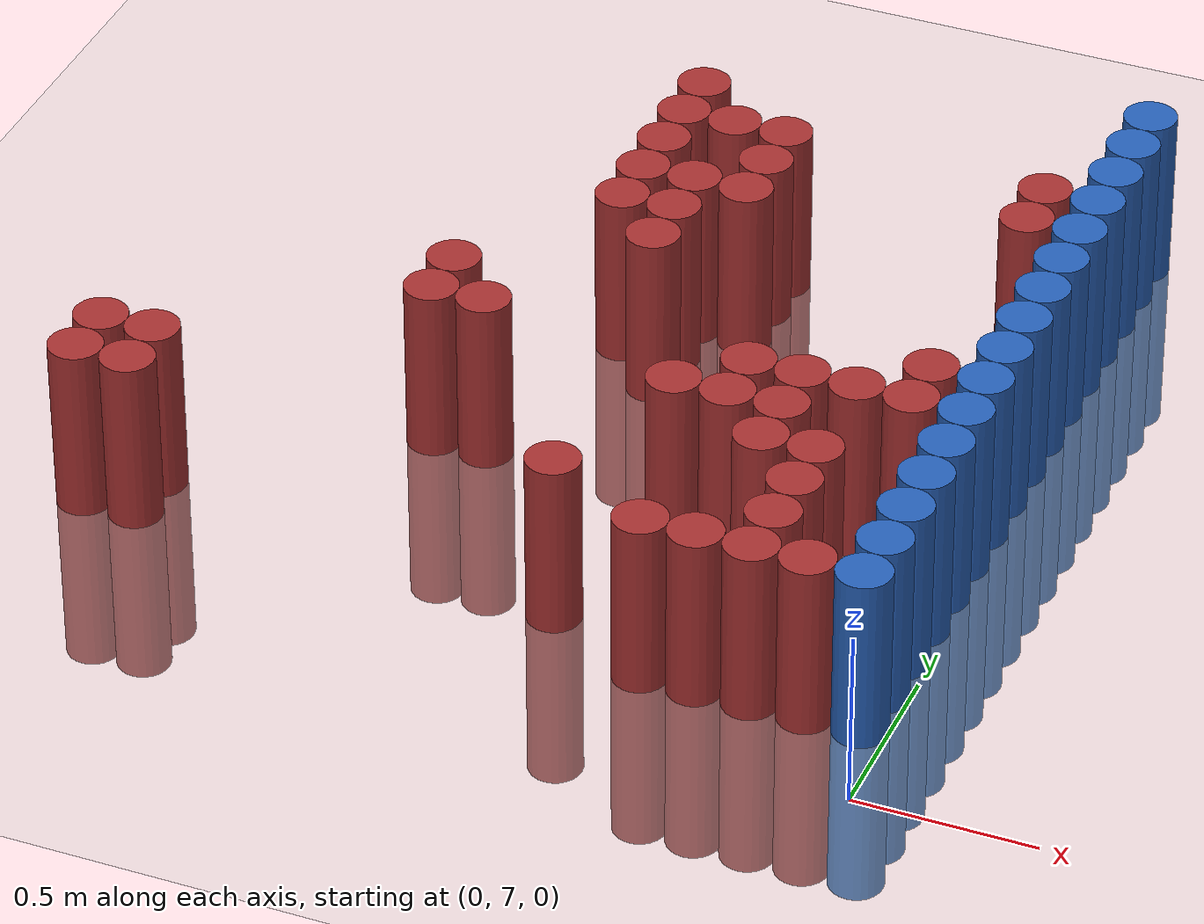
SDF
<sdf version="1.6">
 <world name="world_247">
  <model name="ground_plane">
   <static>1</static>
   <link name="link">
    <collision name="collision">
     <geometry><plane><normal>0 0 1</normal><size>100 100</size></plane></geometry>
     <surface><friction><ode><mu>100</mu><mu2>50</mu2></ode></friction></surface>
    </collision>
    <visual name="visual">
     <cast_shadows>0</cast_shadows>
     <geometry><plane><normal>0 0 1</normal><size>100 100</size></plane></geometry>
     <material>
      <script><uri>file://media/materials/scripts/gazebo.material</uri><name>Gazebo/Grey</name></script>
     </material>
    </visual>
   </link>
  </model>
  <model name="unit_cylinder_160">
   <static>1</static>
   <pose>-2.325000 7.425000 0.000000 0.000000 0.000000 0.000000</pose>
   <link name="link">
    <inertial>
     <mass>1</mass>
     <inertia><ixx>0.145833</ixx><ixy>0</ixy><ixz>0</ixz><iyy>0.145833</iyy><iyz>0</iyz><izz>0.125</izz></inertia>
    </inertial>
    <collision name="collision">
     <geometry><cylinder><radius>0.075000</radius><length>1</length></cylinder></geometry>
    </collision>
    <visual name="visual">
     <geometry><cylinder><radius>0.075000</radius><length>1</length></cylinder></geometry>
     <material>
      <ambient>0.648000 0.192000 0.192000 1</ambient>
      <diffuse>0.648000 0.192000 0.192000 1</diffuse>
     </material>
     <material>
      <script><name>Gazebo/Grey</name><uri>file://media/materials/scripts/gazebo.material</uri></script>
     </material>
    </visual>
   </link>
  </model>
  <model name="unit_cylinder_161">
   <static>1</static>
   <pose>-2.325000 7.575000 0.000000 0.000000 0.000000 0.000000</pose>
   <link name="link">
    <inertial>
     <mass>1</mass>
     <inertia><ixx>0.145833</ixx><ixy>0</ixy><ixz>0</ixz><iyy>0.145833</iyy><iyz>0</iyz><izz>0.125</izz></inertia>
    </inertial>
    <collision name="collision">
     <geometry><cylinder><radius>0.075000</radius><length>1</length></cylinder></geometry>
    </collision>
    <visual name="visual">
     <geometry><cylinder><radius>0.075000</radius><length>1</length></cylinder></geometry>
     <material>
      <ambient>0.648000 0.192000 0.192000 1</ambient>
      <diffuse>0.648000 0.192000 0.192000 1</diffuse>
     </material>
     <material>
      <script><name>Gazebo/Grey</name><uri>file://media/materials/scripts/gazebo.material</uri></script>
     </material>
    </visual>
   </link>
  </model>
  <model name="unit_cylinder_166">
   <static>1</static>
   <pose>-2.175000 7.425000 0.000000 0.000000 0.000000 0.000000</pose>
   <link name="link">
    <inertial>
     <mass>1</mass>
     <inertia><ixx>0.145833</ixx><ixy>0</ixy><ixz>0</ixz><iyy>0.145833</iyy><iyz>0</iyz><izz>0.125</izz></inertia>
    </inertial>
    <collision name="collision">
     <geometry><cylinder><radius>0.075000</radius><length>1</length></cylinder></geometry>
    </collision>
    <visual name="visual">
     <geometry><cylinder><radius>0.075000</radius><length>1</length></cylinder></geometry>
     <material>
      <ambient>0.648000 0.192000 0.192000 1</ambient>
      <diffuse>0.648000 0.192000 0.192000 1</diffuse>
     </material>
     <material>
      <script><name>Gazebo/Grey</name><uri>file://media/materials/scripts/gazebo.material</uri></script>
     </material>
    </visual>
   </link>
  </model>
  <model name="unit_cylinder_167">
   <static>1</static>
   <pose>-2.175000 7.575000 0.000000 0.000000 0.000000 0.000000</pose>
   <link name="link">
    <inertial>
     <mass>1</mass>
     <inertia><ixx>0.145833</ixx><ixy>0</ixy><ixz>0</ixz><iyy>0.145833</iyy><iyz>0</iyz><izz>0.125</izz></inertia>
    </inertial>
    <collision name="collision">
     <geometry><cylinder><radius>0.075000</radius><length>1</length></cylinder></geometry>
    </collision>
    <visual name="visual">
     <geometry><cylinder><radius>0.075000</radius><length>1</length></cylinder></geometry>
     <material>
      <ambient>0.648000 0.192000 0.192000 1</ambient>
      <diffuse>0.648000 0.192000 0.192000 1</diffuse>
     </material>
     <material>
      <script><name>Gazebo/Grey</name><uri>file://media/materials/scripts/gazebo.material</uri></script>
     </material>
    </visual>
   </link>
  </model>
  <model name="unit_cylinder_173">
   <static>1</static>
   <pose>-1.575000 8.025000 0.000000 0.000000 0.000000 0.000000</pose>
   <link name="link">
    <inertial>
     <mass>1</mass>
     <inertia><ixx>0.145833</ixx><ixy>0</ixy><ixz>0</ixz><iyy>0.145833</iyy><iyz>0</iyz><izz>0.125</izz></inertia>
    </inertial>
    <collision name="collision">
     <geometry><cylinder><radius>0.075000</radius><length>1</length></cylinder></geometry>
    </collision>
    <visual name="visual">
     <geometry><cylinder><radius>0.075000</radius><length>1</length></cylinder></geometry>
     <material>
      <ambient>0.648000 0.192000 0.192000 1</ambient>
      <diffuse>0.648000 0.192000 0.192000 1</diffuse>
     </material>
     <material>
      <script><name>Gazebo/Grey</name><uri>file://media/materials/scripts/gazebo.material</uri></script>
     </material>
    </visual>
   </link>
  </model>
  <model name="unit_cylinder_174">
   <static>1</static>
   <pose>-1.575000 8.175000 0.000000 0.000000 0.000000 0.000000</pose>
   <link name="link">
    <inertial>
     <mass>1</mass>
     <inertia><ixx>0.145833</ixx><ixy>0</ixy><ixz>0</ixz><iyy>0.145833</iyy><iyz>0</iyz><izz>0.125</izz></inertia>
    </inertial>
    <collision name="collision">
     <geometry><cylinder><radius>0.075000</radius><length>1</length></cylinder></geometry>
    </collision>
    <visual name="visual">
     <geometry><cylinder><radius>0.075000</radius><length>1</length></cylinder></geometry>
     <material>
      <ambient>0.648000 0.192000 0.192000 1</ambient>
      <diffuse>0.648000 0.192000 0.192000 1</diffuse>
     </material>
     <material>
      <script><name>Gazebo/Grey</name><uri>file://media/materials/scripts/gazebo.material</uri></script>
     </material>
    </visual>
   </link>
  </model>
  <model name="unit_cylinder_175">
   <static>1</static>
   <pose>-1.425000 8.025000 0.000000 0.000000 0.000000 0.000000</pose>
   <link name="link">
    <inertial>
     <mass>1</mass>
     <inertia><ixx>0.145833</ixx><ixy>0</ixy><ixz>0</ixz><iyy>0.145833</iyy><iyz>0</iyz><izz>0.125</izz></inertia>
    </inertial>
    <collision name="collision">
     <geometry><cylinder><radius>0.075000</radius><length>1</length></cylinder></geometry>
    </collision>
    <visual name="visual">
     <geometry><cylinder><radius>0.075000</radius><length>1</length></cylinder></geometry>
     <material>
      <ambient>0.648000 0.192000 0.192000 1</ambient>
      <diffuse>0.648000 0.192000 0.192000 1</diffuse>
     </material>
     <material>
      <script><name>Gazebo/Grey</name><uri>file://media/materials/scripts/gazebo.material</uri></script>
     </material>
    </visual>
   </link>
  </model>
  <model name="unit_cylinder_177">
   <static>1</static>
   <pose>-1.275000 8.625000 0.000000 0.000000 0.000000 0.000000</pose>
   <link name="link">
    <inertial>
     <mass>1</mass>
     <inertia><ixx>0.145833</ixx><ixy>0</ixy><ixz>0</ixz><iyy>0.145833</iyy><iyz>0</iyz><izz>0.125</izz></inertia>
    </inertial>
    <collision name="collision">
     <geometry><cylinder><radius>0.075000</radius><length>1</length></cylinder></geometry>
    </collision>
    <visual name="visual">
     <geometry><cylinder><radius>0.075000</radius><length>1</length></cylinder></geometry>
     <material>
      <ambient>0.648000 0.192000 0.192000 1</ambient>
      <diffuse>0.648000 0.192000 0.192000 1</diffuse>
     </material>
     <material>
      <script><name>Gazebo/Grey</name><uri>file://media/materials/scripts/gazebo.material</uri></script>
     </material>
    </visual>
   </link>
  </model>
  <model name="unit_cylinder_178">
   <static>1</static>
   <pose>-1.275000 8.775000 0.000000 0.000000 0.000000 0.000000</pose>
   <link name="link">
    <inertial>
     <mass>1</mass>
     <inertia><ixx>0.145833</ixx><ixy>0</ixy><ixz>0</ixz><iyy>0.145833</iyy><iyz>0</iyz><izz>0.125</izz></inertia>
    </inertial>
    <collision name="collision">
     <geometry><cylinder><radius>0.075000</radius><length>1</length></cylinder></geometry>
    </collision>
    <visual name="visual">
     <geometry><cylinder><radius>0.075000</radius><length>1</length></cylinder></geometry>
     <material>
      <ambient>0.648000 0.192000 0.192000 1</ambient>
      <diffuse>0.648000 0.192000 0.192000 1</diffuse>
     </material>
     <material>
      <script><name>Gazebo/Grey</name><uri>file://media/materials/scripts/gazebo.material</uri></script>
     </material>
    </visual>
   </link>
  </model>
  <model name="unit_cylinder_179">
   <static>1</static>
   <pose>-1.275000 8.925000 0.000000 0.000000 0.000000 0.000000</pose>
   <link name="link">
    <inertial>
     <mass>1</mass>
     <inertia><ixx>0.145833</ixx><ixy>0</ixy><ixz>0</ixz><iyy>0.145833</iyy><iyz>0</iyz><izz>0.125</izz></inertia>
    </inertial>
    <collision name="collision">
     <geometry><cylinder><radius>0.075000</radius><length>1</length></cylinder></geometry>
    </collision>
    <visual name="visual">
     <geometry><cylinder><radius>0.075000</radius><length>1</length></cylinder></geometry>
     <material>
      <ambient>0.648000 0.192000 0.192000 1</ambient>
      <diffuse>0.648000 0.192000 0.192000 1</diffuse>
     </material>
     <material>
      <script><name>Gazebo/Grey</name><uri>file://media/materials/scripts/gazebo.material</uri></script>
     </material>
    </visual>
   </link>
  </model>
  <model name="unit_cylinder_180">
   <static>1</static>
   <pose>-1.275000 9.075000 0.000000 0.000000 0.000000 0.000000</pose>
   <link name="link">
    <inertial>
     <mass>1</mass>
     <inertia><ixx>0.145833</ixx><ixy>0</ixy><ixz>0</ixz><iyy>0.145833</iyy><iyz>0</iyz><izz>0.125</izz></inertia>
    </inertial>
    <collision name="collision">
     <geometry><cylinder><radius>0.075000</radius><length>1</length></cylinder></geometry>
    </collision>
    <visual name="visual">
     <geometry><cylinder><radius>0.075000</radius><length>1</length></cylinder></geometry>
     <material>
      <ambient>0.648000 0.192000 0.192000 1</ambient>
      <diffuse>0.648000 0.192000 0.192000 1</diffuse>
     </material>
     <material>
      <script><name>Gazebo/Grey</name><uri>file://media/materials/scripts/gazebo.material</uri></script>
     </material>
    </visual>
   </link>
  </model>
  <model name="unit_cylinder_181">
   <static>1</static>
   <pose>-1.275000 9.225000 0.000000 0.000000 0.000000 0.000000</pose>
   <link name="link">
    <inertial>
     <mass>1</mass>
     <inertia><ixx>0.145833</ixx><ixy>0</ixy><ixz>0</ixz><iyy>0.145833</iyy><iyz>0</iyz><izz>0.125</izz></inertia>
    </inertial>
    <collision name="collision">
     <geometry><cylinder><radius>0.075000</radius><length>1</length></cylinder></geometry>
    </collision>
    <visual name="visual">
     <geometry><cylinder><radius>0.075000</radius><length>1</length></cylinder></geometry>
     <material>
      <ambient>0.648000 0.192000 0.192000 1</ambient>
      <diffuse>0.648000 0.192000 0.192000 1</diffuse>
     </material>
     <material>
      <script><name>Gazebo/Grey</name><uri>file://media/materials/scripts/gazebo.material</uri></script>
     </material>
    </visual>
   </link>
  </model>
  <model name="unit_cylinder_187">
   <static>1</static>
   <pose>-1.125000 8.475000 0.000000 0.000000 0.000000 0.000000</pose>
   <link name="link">
    <inertial>
     <mass>1</mass>
     <inertia><ixx>0.145833</ixx><ixy>0</ixy><ixz>0</ixz><iyy>0.145833</iyy><iyz>0</iyz><izz>0.125</izz></inertia>
    </inertial>
    <collision name="collision">
     <geometry><cylinder><radius>0.075000</radius><length>1</length></cylinder></geometry>
    </collision>
    <visual name="visual">
     <geometry><cylinder><radius>0.075000</radius><length>1</length></cylinder></geometry>
     <material>
      <ambient>0.648000 0.192000 0.192000 1</ambient>
      <diffuse>0.648000 0.192000 0.192000 1</diffuse>
     </material>
     <material>
      <script><name>Gazebo/Grey</name><uri>file://media/materials/scripts/gazebo.material</uri></script>
     </material>
    </visual>
   </link>
  </model>
  <model name="unit_cylinder_188">
   <static>1</static>
   <pose>-1.125000 8.625000 0.000000 0.000000 0.000000 0.000000</pose>
   <link name="link">
    <inertial>
     <mass>1</mass>
     <inertia><ixx>0.145833</ixx><ixy>0</ixy><ixz>0</ixz><iyy>0.145833</iyy><iyz>0</iyz><izz>0.125</izz></inertia>
    </inertial>
    <collision name="collision">
     <geometry><cylinder><radius>0.075000</radius><length>1</length></cylinder></geometry>
    </collision>
    <visual name="visual">
     <geometry><cylinder><radius>0.075000</radius><length>1</length></cylinder></geometry>
     <material>
      <ambient>0.648000 0.192000 0.192000 1</ambient>
      <diffuse>0.648000 0.192000 0.192000 1</diffuse>
     </material>
     <material>
      <script><name>Gazebo/Grey</name><uri>file://media/materials/scripts/gazebo.material</uri></script>
     </material>
    </visual>
   </link>
  </model>
  <model name="unit_cylinder_189">
   <static>1</static>
   <pose>-1.125000 8.775000 0.000000 0.000000 0.000000 0.000000</pose>
   <link name="link">
    <inertial>
     <mass>1</mass>
     <inertia><ixx>0.145833</ixx><ixy>0</ixy><ixz>0</ixz><iyy>0.145833</iyy><iyz>0</iyz><izz>0.125</izz></inertia>
    </inertial>
    <collision name="collision">
     <geometry><cylinder><radius>0.075000</radius><length>1</length></cylinder></geometry>
    </collision>
    <visual name="visual">
     <geometry><cylinder><radius>0.075000</radius><length>1</length></cylinder></geometry>
     <material>
      <ambient>0.648000 0.192000 0.192000 1</ambient>
      <diffuse>0.648000 0.192000 0.192000 1</diffuse>
     </material>
     <material>
      <script><name>Gazebo/Grey</name><uri>file://media/materials/scripts/gazebo.material</uri></script>
     </material>
    </visual>
   </link>
  </model>
  <model name="unit_cylinder_190">
   <static>1</static>
   <pose>-1.125000 9.075000 0.000000 0.000000 0.000000 0.000000</pose>
   <link name="link">
    <inertial>
     <mass>1</mass>
     <inertia><ixx>0.145833</ixx><ixy>0</ixy><ixz>0</ixz><iyy>0.145833</iyy><iyz>0</iyz><izz>0.125</izz></inertia>
    </inertial>
    <collision name="collision">
     <geometry><cylinder><radius>0.075000</radius><length>1</length></cylinder></geometry>
    </collision>
    <visual name="visual">
     <geometry><cylinder><radius>0.075000</radius><length>1</length></cylinder></geometry>
     <material>
      <ambient>0.648000 0.192000 0.192000 1</ambient>
      <diffuse>0.648000 0.192000 0.192000 1</diffuse>
     </material>
     <material>
      <script><name>Gazebo/Grey</name><uri>file://media/materials/scripts/gazebo.material</uri></script>
     </material>
    </visual>
   </link>
  </model>
  <model name="unit_cylinder_196">
   <static>1</static>
   <pose>-0.975000 7.425000 0.000000 0.000000 0.000000 0.000000</pose>
   <link name="link">
    <inertial>
     <mass>1</mass>
     <inertia><ixx>0.145833</ixx><ixy>0</ixy><ixz>0</ixz><iyy>0.145833</iyy><iyz>0</iyz><izz>0.125</izz></inertia>
    </inertial>
    <collision name="collision">
     <geometry><cylinder><radius>0.075000</radius><length>1</length></cylinder></geometry>
    </collision>
    <visual name="visual">
     <geometry><cylinder><radius>0.075000</radius><length>1</length></cylinder></geometry>
     <material>
      <ambient>0.648000 0.192000 0.192000 1</ambient>
      <diffuse>0.648000 0.192000 0.192000 1</diffuse>
     </material>
     <material>
      <script><name>Gazebo/Grey</name><uri>file://media/materials/scripts/gazebo.material</uri></script>
     </material>
    </visual>
   </link>
  </model>
  <model name="unit_cylinder_197">
   <static>1</static>
   <pose>-0.975000 8.775000 0.000000 0.000000 0.000000 0.000000</pose>
   <link name="link">
    <inertial>
     <mass>1</mass>
     <inertia><ixx>0.145833</ixx><ixy>0</ixy><ixz>0</ixz><iyy>0.145833</iyy><iyz>0</iyz><izz>0.125</izz></inertia>
    </inertial>
    <collision name="collision">
     <geometry><cylinder><radius>0.075000</radius><length>1</length></cylinder></geometry>
    </collision>
    <visual name="visual">
     <geometry><cylinder><radius>0.075000</radius><length>1</length></cylinder></geometry>
     <material>
      <ambient>0.648000 0.192000 0.192000 1</ambient>
      <diffuse>0.648000 0.192000 0.192000 1</diffuse>
     </material>
     <material>
      <script><name>Gazebo/Grey</name><uri>file://media/materials/scripts/gazebo.material</uri></script>
     </material>
    </visual>
   </link>
  </model>
  <model name="unit_cylinder_198">
   <static>1</static>
   <pose>-0.975000 8.925000 0.000000 0.000000 0.000000 0.000000</pose>
   <link name="link">
    <inertial>
     <mass>1</mass>
     <inertia><ixx>0.145833</ixx><ixy>0</ixy><ixz>0</ixz><iyy>0.145833</iyy><iyz>0</iyz><izz>0.125</izz></inertia>
    </inertial>
    <collision name="collision">
     <geometry><cylinder><radius>0.075000</radius><length>1</length></cylinder></geometry>
    </collision>
    <visual name="visual">
     <geometry><cylinder><radius>0.075000</radius><length>1</length></cylinder></geometry>
     <material>
      <ambient>0.648000 0.192000 0.192000 1</ambient>
      <diffuse>0.648000 0.192000 0.192000 1</diffuse>
     </material>
     <material>
      <script><name>Gazebo/Grey</name><uri>file://media/materials/scripts/gazebo.material</uri></script>
     </material>
    </visual>
   </link>
  </model>
  <model name="unit_cylinder_199">
   <static>1</static>
   <pose>-0.975000 9.075000 0.000000 0.000000 0.000000 0.000000</pose>
   <link name="link">
    <inertial>
     <mass>1</mass>
     <inertia><ixx>0.145833</ixx><ixy>0</ixy><ixz>0</ixz><iyy>0.145833</iyy><iyz>0</iyz><izz>0.125</izz></inertia>
    </inertial>
    <collision name="collision">
     <geometry><cylinder><radius>0.075000</radius><length>1</length></cylinder></geometry>
    </collision>
    <visual name="visual">
     <geometry><cylinder><radius>0.075000</radius><length>1</length></cylinder></geometry>
     <material>
      <ambient>0.648000 0.192000 0.192000 1</ambient>
      <diffuse>0.648000 0.192000 0.192000 1</diffuse>
     </material>
     <material>
      <script><name>Gazebo/Grey</name><uri>file://media/materials/scripts/gazebo.material</uri></script>
     </material>
    </visual>
   </link>
  </model>
  <model name="unit_cylinder_204">
   <static>1</static>
   <pose>-0.825000 7.875000 0.000000 0.000000 0.000000 0.000000</pose>
   <link name="link">
    <inertial>
     <mass>1</mass>
     <inertia><ixx>0.145833</ixx><ixy>0</ixy><ixz>0</ixz><iyy>0.145833</iyy><iyz>0</iyz><izz>0.125</izz></inertia>
    </inertial>
    <collision name="collision">
     <geometry><cylinder><radius>0.075000</radius><length>1</length></cylinder></geometry>
    </collision>
    <visual name="visual">
     <geometry><cylinder><radius>0.075000</radius><length>1</length></cylinder></geometry>
     <material>
      <ambient>0.648000 0.192000 0.192000 1</ambient>
      <diffuse>0.648000 0.192000 0.192000 1</diffuse>
     </material>
     <material>
      <script><name>Gazebo/Grey</name><uri>file://media/materials/scripts/gazebo.material</uri></script>
     </material>
    </visual>
   </link>
  </model>
  <model name="unit_cylinder_209">
   <static>1</static>
   <pose>-0.675000 7.275000 0.000000 0.000000 0.000000 0.000000</pose>
   <link name="link">
    <inertial>
     <mass>1</mass>
     <inertia><ixx>0.145833</ixx><ixy>0</ixy><ixz>0</ixz><iyy>0.145833</iyy><iyz>0</iyz><izz>0.125</izz></inertia>
    </inertial>
    <collision name="collision">
     <geometry><cylinder><radius>0.075000</radius><length>1</length></cylinder></geometry>
    </collision>
    <visual name="visual">
     <geometry><cylinder><radius>0.075000</radius><length>1</length></cylinder></geometry>
     <material>
      <ambient>0.648000 0.192000 0.192000 1</ambient>
      <diffuse>0.648000 0.192000 0.192000 1</diffuse>
     </material>
     <material>
      <script><name>Gazebo/Grey</name><uri>file://media/materials/scripts/gazebo.material</uri></script>
     </material>
    </visual>
   </link>
  </model>
  <model name="unit_cylinder_210">
   <static>1</static>
   <pose>-0.675000 7.875000 0.000000 0.000000 0.000000 0.000000</pose>
   <link name="link">
    <inertial>
     <mass>1</mass>
     <inertia><ixx>0.145833</ixx><ixy>0</ixy><ixz>0</ixz><iyy>0.145833</iyy><iyz>0</iyz><izz>0.125</izz></inertia>
    </inertial>
    <collision name="collision">
     <geometry><cylinder><radius>0.075000</radius><length>1</length></cylinder></geometry>
    </collision>
    <visual name="visual">
     <geometry><cylinder><radius>0.075000</radius><length>1</length></cylinder></geometry>
     <material>
      <ambient>0.648000 0.192000 0.192000 1</ambient>
      <diffuse>0.648000 0.192000 0.192000 1</diffuse>
     </material>
     <material>
      <script><name>Gazebo/Grey</name><uri>file://media/materials/scripts/gazebo.material</uri></script>
     </material>
    </visual>
   </link>
  </model>
  <model name="unit_cylinder_211">
   <static>1</static>
   <pose>-0.675000 8.025000 0.000000 0.000000 0.000000 0.000000</pose>
   <link name="link">
    <inertial>
     <mass>1</mass>
     <inertia><ixx>0.145833</ixx><ixy>0</ixy><ixz>0</ixz><iyy>0.145833</iyy><iyz>0</iyz><izz>0.125</izz></inertia>
    </inertial>
    <collision name="collision">
     <geometry><cylinder><radius>0.075000</radius><length>1</length></cylinder></geometry>
    </collision>
    <visual name="visual">
     <geometry><cylinder><radius>0.075000</radius><length>1</length></cylinder></geometry>
     <material>
      <ambient>0.648000 0.192000 0.192000 1</ambient>
      <diffuse>0.648000 0.192000 0.192000 1</diffuse>
     </material>
     <material>
      <script><name>Gazebo/Grey</name><uri>file://media/materials/scripts/gazebo.material</uri></script>
     </material>
    </visual>
   </link>
  </model>
  <model name="unit_cylinder_214">
   <static>1</static>
   <pose>-0.525000 7.275000 0.000000 0.000000 0.000000 0.000000</pose>
   <link name="link">
    <inertial>
     <mass>1</mass>
     <inertia><ixx>0.145833</ixx><ixy>0</ixy><ixz>0</ixz><iyy>0.145833</iyy><iyz>0</iyz><izz>0.125</izz></inertia>
    </inertial>
    <collision name="collision">
     <geometry><cylinder><radius>0.075000</radius><length>1</length></cylinder></geometry>
    </collision>
    <visual name="visual">
     <geometry><cylinder><radius>0.075000</radius><length>1</length></cylinder></geometry>
     <material>
      <ambient>0.648000 0.192000 0.192000 1</ambient>
      <diffuse>0.648000 0.192000 0.192000 1</diffuse>
     </material>
     <material>
      <script><name>Gazebo/Grey</name><uri>file://media/materials/scripts/gazebo.material</uri></script>
     </material>
    </visual>
   </link>
  </model>
  <model name="unit_cylinder_215">
   <static>1</static>
   <pose>-0.525000 7.725000 0.000000 0.000000 0.000000 0.000000</pose>
   <link name="link">
    <inertial>
     <mass>1</mass>
     <inertia><ixx>0.145833</ixx><ixy>0</ixy><ixz>0</ixz><iyy>0.145833</iyy><iyz>0</iyz><izz>0.125</izz></inertia>
    </inertial>
    <collision name="collision">
     <geometry><cylinder><radius>0.075000</radius><length>1</length></cylinder></geometry>
    </collision>
    <visual name="visual">
     <geometry><cylinder><radius>0.075000</radius><length>1</length></cylinder></geometry>
     <material>
      <ambient>0.648000 0.192000 0.192000 1</ambient>
      <diffuse>0.648000 0.192000 0.192000 1</diffuse>
     </material>
     <material>
      <script><name>Gazebo/Grey</name><uri>file://media/materials/scripts/gazebo.material</uri></script>
     </material>
    </visual>
   </link>
  </model>
  <model name="unit_cylinder_216">
   <static>1</static>
   <pose>-0.525000 7.875000 0.000000 0.000000 0.000000 0.000000</pose>
   <link name="link">
    <inertial>
     <mass>1</mass>
     <inertia><ixx>0.145833</ixx><ixy>0</ixy><ixz>0</ixz><iyy>0.145833</iyy><iyz>0</iyz><izz>0.125</izz></inertia>
    </inertial>
    <collision name="collision">
     <geometry><cylinder><radius>0.075000</radius><length>1</length></cylinder></geometry>
    </collision>
    <visual name="visual">
     <geometry><cylinder><radius>0.075000</radius><length>1</length></cylinder></geometry>
     <material>
      <ambient>0.648000 0.192000 0.192000 1</ambient>
      <diffuse>0.648000 0.192000 0.192000 1</diffuse>
     </material>
     <material>
      <script><name>Gazebo/Grey</name><uri>file://media/materials/scripts/gazebo.material</uri></script>
     </material>
    </visual>
   </link>
  </model>
  <model name="unit_cylinder_217">
   <static>1</static>
   <pose>-0.525000 8.025000 0.000000 0.000000 0.000000 0.000000</pose>
   <link name="link">
    <inertial>
     <mass>1</mass>
     <inertia><ixx>0.145833</ixx><ixy>0</ixy><ixz>0</ixz><iyy>0.145833</iyy><iyz>0</iyz><izz>0.125</izz></inertia>
    </inertial>
    <collision name="collision">
     <geometry><cylinder><radius>0.075000</radius><length>1</length></cylinder></geometry>
    </collision>
    <visual name="visual">
     <geometry><cylinder><radius>0.075000</radius><length>1</length></cylinder></geometry>
     <material>
      <ambient>0.648000 0.192000 0.192000 1</ambient>
      <diffuse>0.648000 0.192000 0.192000 1</diffuse>
     </material>
     <material>
      <script><name>Gazebo/Grey</name><uri>file://media/materials/scripts/gazebo.material</uri></script>
     </material>
    </visual>
   </link>
  </model>
  <model name="unit_cylinder_220">
   <static>1</static>
   <pose>-0.375000 7.275000 0.000000 0.000000 0.000000 0.000000</pose>
   <link name="link">
    <inertial>
     <mass>1</mass>
     <inertia><ixx>0.145833</ixx><ixy>0</ixy><ixz>0</ixz><iyy>0.145833</iyy><iyz>0</iyz><izz>0.125</izz></inertia>
    </inertial>
    <collision name="collision">
     <geometry><cylinder><radius>0.075000</radius><length>1</length></cylinder></geometry>
    </collision>
    <visual name="visual">
     <geometry><cylinder><radius>0.075000</radius><length>1</length></cylinder></geometry>
     <material>
      <ambient>0.648000 0.192000 0.192000 1</ambient>
      <diffuse>0.648000 0.192000 0.192000 1</diffuse>
     </material>
     <material>
      <script><name>Gazebo/Grey</name><uri>file://media/materials/scripts/gazebo.material</uri></script>
     </material>
    </visual>
   </link>
  </model>
  <model name="unit_cylinder_221">
   <static>1</static>
   <pose>-0.375000 7.425000 0.000000 0.000000 0.000000 0.000000</pose>
   <link name="link">
    <inertial>
     <mass>1</mass>
     <inertia><ixx>0.145833</ixx><ixy>0</ixy><ixz>0</ixz><iyy>0.145833</iyy><iyz>0</iyz><izz>0.125</izz></inertia>
    </inertial>
    <collision name="collision">
     <geometry><cylinder><radius>0.075000</radius><length>1</length></cylinder></geometry>
    </collision>
    <visual name="visual">
     <geometry><cylinder><radius>0.075000</radius><length>1</length></cylinder></geometry>
     <material>
      <ambient>0.648000 0.192000 0.192000 1</ambient>
      <diffuse>0.648000 0.192000 0.192000 1</diffuse>
     </material>
     <material>
      <script><name>Gazebo/Grey</name><uri>file://media/materials/scripts/gazebo.material</uri></script>
     </material>
    </visual>
   </link>
  </model>
  <model name="unit_cylinder_222">
   <static>1</static>
   <pose>-0.375000 7.575000 0.000000 0.000000 0.000000 0.000000</pose>
   <link name="link">
    <inertial>
     <mass>1</mass>
     <inertia><ixx>0.145833</ixx><ixy>0</ixy><ixz>0</ixz><iyy>0.145833</iyy><iyz>0</iyz><izz>0.125</izz></inertia>
    </inertial>
    <collision name="collision">
     <geometry><cylinder><radius>0.075000</radius><length>1</length></cylinder></geometry>
    </collision>
    <visual name="visual">
     <geometry><cylinder><radius>0.075000</radius><length>1</length></cylinder></geometry>
     <material>
      <ambient>0.648000 0.192000 0.192000 1</ambient>
      <diffuse>0.648000 0.192000 0.192000 1</diffuse>
     </material>
     <material>
      <script><name>Gazebo/Grey</name><uri>file://media/materials/scripts/gazebo.material</uri></script>
     </material>
    </visual>
   </link>
  </model>
  <model name="unit_cylinder_223">
   <static>1</static>
   <pose>-0.375000 7.725000 0.000000 0.000000 0.000000 0.000000</pose>
   <link name="link">
    <inertial>
     <mass>1</mass>
     <inertia><ixx>0.145833</ixx><ixy>0</ixy><ixz>0</ixz><iyy>0.145833</iyy><iyz>0</iyz><izz>0.125</izz></inertia>
    </inertial>
    <collision name="collision">
     <geometry><cylinder><radius>0.075000</radius><length>1</length></cylinder></geometry>
    </collision>
    <visual name="visual">
     <geometry><cylinder><radius>0.075000</radius><length>1</length></cylinder></geometry>
     <material>
      <ambient>0.648000 0.192000 0.192000 1</ambient>
      <diffuse>0.648000 0.192000 0.192000 1</diffuse>
     </material>
     <material>
      <script><name>Gazebo/Grey</name><uri>file://media/materials/scripts/gazebo.material</uri></script>
     </material>
    </visual>
   </link>
  </model>
  <model name="unit_cylinder_224">
   <static>1</static>
   <pose>-0.375000 8.025000 0.000000 0.000000 0.000000 0.000000</pose>
   <link name="link">
    <inertial>
     <mass>1</mass>
     <inertia><ixx>0.145833</ixx><ixy>0</ixy><ixz>0</ixz><iyy>0.145833</iyy><iyz>0</iyz><izz>0.125</izz></inertia>
    </inertial>
    <collision name="collision">
     <geometry><cylinder><radius>0.075000</radius><length>1</length></cylinder></geometry>
    </collision>
    <visual name="visual">
     <geometry><cylinder><radius>0.075000</radius><length>1</length></cylinder></geometry>
     <material>
      <ambient>0.648000 0.192000 0.192000 1</ambient>
      <diffuse>0.648000 0.192000 0.192000 1</diffuse>
     </material>
     <material>
      <script><name>Gazebo/Grey</name><uri>file://media/materials/scripts/gazebo.material</uri></script>
     </material>
    </visual>
   </link>
  </model>
  <model name="unit_cylinder_233">
   <static>1</static>
   <pose>-0.225000 7.275000 0.000000 0.000000 0.000000 0.000000</pose>
   <link name="link">
    <inertial>
     <mass>1</mass>
     <inertia><ixx>0.145833</ixx><ixy>0</ixy><ixz>0</ixz><iyy>0.145833</iyy><iyz>0</iyz><izz>0.125</izz></inertia>
    </inertial>
    <collision name="collision">
     <geometry><cylinder><radius>0.075000</radius><length>1</length></cylinder></geometry>
    </collision>
    <visual name="visual">
     <geometry><cylinder><radius>0.075000</radius><length>1</length></cylinder></geometry>
     <material>
      <ambient>0.648000 0.192000 0.192000 1</ambient>
      <diffuse>0.648000 0.192000 0.192000 1</diffuse>
     </material>
     <material>
      <script><name>Gazebo/Grey</name><uri>file://media/materials/scripts/gazebo.material</uri></script>
     </material>
    </visual>
   </link>
  </model>
  <model name="unit_cylinder_234">
   <static>1</static>
   <pose>-0.225000 8.025000 0.000000 0.000000 0.000000 0.000000</pose>
   <link name="link">
    <inertial>
     <mass>1</mass>
     <inertia><ixx>0.145833</ixx><ixy>0</ixy><ixz>0</ixz><iyy>0.145833</iyy><iyz>0</iyz><izz>0.125</izz></inertia>
    </inertial>
    <collision name="collision">
     <geometry><cylinder><radius>0.075000</radius><length>1</length></cylinder></geometry>
    </collision>
    <visual name="visual">
     <geometry><cylinder><radius>0.075000</radius><length>1</length></cylinder></geometry>
     <material>
      <ambient>0.648000 0.192000 0.192000 1</ambient>
      <diffuse>0.648000 0.192000 0.192000 1</diffuse>
     </material>
     <material>
      <script><name>Gazebo/Grey</name><uri>file://media/materials/scripts/gazebo.material</uri></script>
     </material>
    </visual>
   </link>
  </model>
  <model name="unit_cylinder_235">
   <static>1</static>
   <pose>-0.225000 8.175000 0.000000 0.000000 0.000000 0.000000</pose>
   <link name="link">
    <inertial>
     <mass>1</mass>
     <inertia><ixx>0.145833</ixx><ixy>0</ixy><ixz>0</ixz><iyy>0.145833</iyy><iyz>0</iyz><izz>0.125</izz></inertia>
    </inertial>
    <collision name="collision">
     <geometry><cylinder><radius>0.075000</radius><length>1</length></cylinder></geometry>
    </collision>
    <visual name="visual">
     <geometry><cylinder><radius>0.075000</radius><length>1</length></cylinder></geometry>
     <material>
      <ambient>0.648000 0.192000 0.192000 1</ambient>
      <diffuse>0.648000 0.192000 0.192000 1</diffuse>
     </material>
     <material>
      <script><name>Gazebo/Grey</name><uri>file://media/materials/scripts/gazebo.material</uri></script>
     </material>
    </visual>
   </link>
  </model>
  <model name="unit_cylinder_236">
   <static>1</static>
   <pose>-0.225000 8.925000 0.000000 0.000000 0.000000 0.000000</pose>
   <link name="link">
    <inertial>
     <mass>1</mass>
     <inertia><ixx>0.145833</ixx><ixy>0</ixy><ixz>0</ixz><iyy>0.145833</iyy><iyz>0</iyz><izz>0.125</izz></inertia>
    </inertial>
    <collision name="collision">
     <geometry><cylinder><radius>0.075000</radius><length>1</length></cylinder></geometry>
    </collision>
    <visual name="visual">
     <geometry><cylinder><radius>0.075000</radius><length>1</length></cylinder></geometry>
     <material>
      <ambient>0.648000 0.192000 0.192000 1</ambient>
      <diffuse>0.648000 0.192000 0.192000 1</diffuse>
     </material>
     <material>
      <script><name>Gazebo/Grey</name><uri>file://media/materials/scripts/gazebo.material</uri></script>
     </material>
    </visual>
   </link>
  </model>
  <model name="unit_cylinder_237">
   <static>1</static>
   <pose>-0.225000 9.075000 0.000000 0.000000 0.000000 0.000000</pose>
   <link name="link">
    <inertial>
     <mass>1</mass>
     <inertia><ixx>0.145833</ixx><ixy>0</ixy><ixz>0</ixz><iyy>0.145833</iyy><iyz>0</iyz><izz>0.125</izz></inertia>
    </inertial>
    <collision name="collision">
     <geometry><cylinder><radius>0.075000</radius><length>1</length></cylinder></geometry>
    </collision>
    <visual name="visual">
     <geometry><cylinder><radius>0.075000</radius><length>1</length></cylinder></geometry>
     <material>
      <ambient>0.648000 0.192000 0.192000 1</ambient>
      <diffuse>0.648000 0.192000 0.192000 1</diffuse>
     </material>
     <material>
      <script><name>Gazebo/Grey</name><uri>file://media/materials/scripts/gazebo.material</uri></script>
     </material>
    </visual>
   </link>
  </model>
  <model name="unit_cylinder_252">
   <static>1</static>
   <pose>-0.075000 7.275000 0.000000 0.000000 0.000000 0.000000</pose>
   <link name="link">
    <inertial>
     <mass>1</mass>
     <inertia><ixx>0.145833</ixx><ixy>0</ixy><ixz>0</ixz><iyy>0.145833</iyy><iyz>0</iyz><izz>0.125</izz></inertia>
    </inertial>
    <collision name="collision">
     <geometry><cylinder><radius>0.075000</radius><length>1</length></cylinder></geometry>
    </collision>
    <visual name="visual">
     <geometry><cylinder><radius>0.075000</radius><length>1</length></cylinder></geometry>
     <material>
      <ambient>0.152000 0.379000 0.720000 1</ambient>
      <diffuse>0.152000 0.379000 0.720000 1</diffuse>
     </material>
     <material>
      <script><name>Gazebo/Grey</name><uri>file://media/materials/scripts/gazebo.material</uri></script>
     </material>
    </visual>
   </link>
  </model>
  <model name="unit_cylinder_253">
   <static>1</static>
   <pose>-0.075000 7.425000 0.000000 0.000000 0.000000 0.000000</pose>
   <link name="link">
    <inertial>
     <mass>1</mass>
     <inertia><ixx>0.145833</ixx><ixy>0</ixy><ixz>0</ixz><iyy>0.145833</iyy><iyz>0</iyz><izz>0.125</izz></inertia>
    </inertial>
    <collision name="collision">
     <geometry><cylinder><radius>0.075000</radius><length>1</length></cylinder></geometry>
    </collision>
    <visual name="visual">
     <geometry><cylinder><radius>0.075000</radius><length>1</length></cylinder></geometry>
     <material>
      <ambient>0.152000 0.379000 0.720000 1</ambient>
      <diffuse>0.152000 0.379000 0.720000 1</diffuse>
     </material>
     <material>
      <script><name>Gazebo/Grey</name><uri>file://media/materials/scripts/gazebo.material</uri></script>
     </material>
    </visual>
   </link>
  </model>
  <model name="unit_cylinder_254">
   <static>1</static>
   <pose>-0.075000 7.575000 0.000000 0.000000 0.000000 0.000000</pose>
   <link name="link">
    <inertial>
     <mass>1</mass>
     <inertia><ixx>0.145833</ixx><ixy>0</ixy><ixz>0</ixz><iyy>0.145833</iyy><iyz>0</iyz><izz>0.125</izz></inertia>
    </inertial>
    <collision name="collision">
     <geometry><cylinder><radius>0.075000</radius><length>1</length></cylinder></geometry>
    </collision>
    <visual name="visual">
     <geometry><cylinder><radius>0.075000</radius><length>1</length></cylinder></geometry>
     <material>
      <ambient>0.152000 0.379000 0.720000 1</ambient>
      <diffuse>0.152000 0.379000 0.720000 1</diffuse>
     </material>
     <material>
      <script><name>Gazebo/Grey</name><uri>file://media/materials/scripts/gazebo.material</uri></script>
     </material>
    </visual>
   </link>
  </model>
  <model name="unit_cylinder_255">
   <static>1</static>
   <pose>-0.075000 7.725000 0.000000 0.000000 0.000000 0.000000</pose>
   <link name="link">
    <inertial>
     <mass>1</mass>
     <inertia><ixx>0.145833</ixx><ixy>0</ixy><ixz>0</ixz><iyy>0.145833</iyy><iyz>0</iyz><izz>0.125</izz></inertia>
    </inertial>
    <collision name="collision">
     <geometry><cylinder><radius>0.075000</radius><length>1</length></cylinder></geometry>
    </collision>
    <visual name="visual">
     <geometry><cylinder><radius>0.075000</radius><length>1</length></cylinder></geometry>
     <material>
      <ambient>0.152000 0.379000 0.720000 1</ambient>
      <diffuse>0.152000 0.379000 0.720000 1</diffuse>
     </material>
     <material>
      <script><name>Gazebo/Grey</name><uri>file://media/materials/scripts/gazebo.material</uri></script>
     </material>
    </visual>
   </link>
  </model>
  <model name="unit_cylinder_256">
   <static>1</static>
   <pose>-0.075000 7.875000 0.000000 0.000000 0.000000 0.000000</pose>
   <link name="link">
    <inertial>
     <mass>1</mass>
     <inertia><ixx>0.145833</ixx><ixy>0</ixy><ixz>0</ixz><iyy>0.145833</iyy><iyz>0</iyz><izz>0.125</izz></inertia>
    </inertial>
    <collision name="collision">
     <geometry><cylinder><radius>0.075000</radius><length>1</length></cylinder></geometry>
    </collision>
    <visual name="visual">
     <geometry><cylinder><radius>0.075000</radius><length>1</length></cylinder></geometry>
     <material>
      <ambient>0.152000 0.379000 0.720000 1</ambient>
      <diffuse>0.152000 0.379000 0.720000 1</diffuse>
     </material>
     <material>
      <script><name>Gazebo/Grey</name><uri>file://media/materials/scripts/gazebo.material</uri></script>
     </material>
    </visual>
   </link>
  </model>
  <model name="unit_cylinder_257">
   <static>1</static>
   <pose>-0.075000 8.025000 0.000000 0.000000 0.000000 0.000000</pose>
   <link name="link">
    <inertial>
     <mass>1</mass>
     <inertia><ixx>0.145833</ixx><ixy>0</ixy><ixz>0</ixz><iyy>0.145833</iyy><iyz>0</iyz><izz>0.125</izz></inertia>
    </inertial>
    <collision name="collision">
     <geometry><cylinder><radius>0.075000</radius><length>1</length></cylinder></geometry>
    </collision>
    <visual name="visual">
     <geometry><cylinder><radius>0.075000</radius><length>1</length></cylinder></geometry>
     <material>
      <ambient>0.152000 0.379000 0.720000 1</ambient>
      <diffuse>0.152000 0.379000 0.720000 1</diffuse>
     </material>
     <material>
      <script><name>Gazebo/Grey</name><uri>file://media/materials/scripts/gazebo.material</uri></script>
     </material>
    </visual>
   </link>
  </model>
  <model name="unit_cylinder_258">
   <static>1</static>
   <pose>-0.075000 8.175000 0.000000 0.000000 0.000000 0.000000</pose>
   <link name="link">
    <inertial>
     <mass>1</mass>
     <inertia><ixx>0.145833</ixx><ixy>0</ixy><ixz>0</ixz><iyy>0.145833</iyy><iyz>0</iyz><izz>0.125</izz></inertia>
    </inertial>
    <collision name="collision">
     <geometry><cylinder><radius>0.075000</radius><length>1</length></cylinder></geometry>
    </collision>
    <visual name="visual">
     <geometry><cylinder><radius>0.075000</radius><length>1</length></cylinder></geometry>
     <material>
      <ambient>0.152000 0.379000 0.720000 1</ambient>
      <diffuse>0.152000 0.379000 0.720000 1</diffuse>
     </material>
     <material>
      <script><name>Gazebo/Grey</name><uri>file://media/materials/scripts/gazebo.material</uri></script>
     </material>
    </visual>
   </link>
  </model>
  <model name="unit_cylinder_259">
   <static>1</static>
   <pose>-0.075000 8.325000 0.000000 0.000000 0.000000 0.000000</pose>
   <link name="link">
    <inertial>
     <mass>1</mass>
     <inertia><ixx>0.145833</ixx><ixy>0</ixy><ixz>0</ixz><iyy>0.145833</iyy><iyz>0</iyz><izz>0.125</izz></inertia>
    </inertial>
    <collision name="collision">
     <geometry><cylinder><radius>0.075000</radius><length>1</length></cylinder></geometry>
    </collision>
    <visual name="visual">
     <geometry><cylinder><radius>0.075000</radius><length>1</length></cylinder></geometry>
     <material>
      <ambient>0.152000 0.379000 0.720000 1</ambient>
      <diffuse>0.152000 0.379000 0.720000 1</diffuse>
     </material>
     <material>
      <script><name>Gazebo/Grey</name><uri>file://media/materials/scripts/gazebo.material</uri></script>
     </material>
    </visual>
   </link>
  </model>
  <model name="unit_cylinder_260">
   <static>1</static>
   <pose>-0.075000 8.475000 0.000000 0.000000 0.000000 0.000000</pose>
   <link name="link">
    <inertial>
     <mass>1</mass>
     <inertia><ixx>0.145833</ixx><ixy>0</ixy><ixz>0</ixz><iyy>0.145833</iyy><iyz>0</iyz><izz>0.125</izz></inertia>
    </inertial>
    <collision name="collision">
     <geometry><cylinder><radius>0.075000</radius><length>1</length></cylinder></geometry>
    </collision>
    <visual name="visual">
     <geometry><cylinder><radius>0.075000</radius><length>1</length></cylinder></geometry>
     <material>
      <ambient>0.152000 0.379000 0.720000 1</ambient>
      <diffuse>0.152000 0.379000 0.720000 1</diffuse>
     </material>
     <material>
      <script><name>Gazebo/Grey</name><uri>file://media/materials/scripts/gazebo.material</uri></script>
     </material>
    </visual>
   </link>
  </model>
  <model name="unit_cylinder_261">
   <static>1</static>
   <pose>-0.075000 8.625000 0.000000 0.000000 0.000000 0.000000</pose>
   <link name="link">
    <inertial>
     <mass>1</mass>
     <inertia><ixx>0.145833</ixx><ixy>0</ixy><ixz>0</ixz><iyy>0.145833</iyy><iyz>0</iyz><izz>0.125</izz></inertia>
    </inertial>
    <collision name="collision">
     <geometry><cylinder><radius>0.075000</radius><length>1</length></cylinder></geometry>
    </collision>
    <visual name="visual">
     <geometry><cylinder><radius>0.075000</radius><length>1</length></cylinder></geometry>
     <material>
      <ambient>0.152000 0.379000 0.720000 1</ambient>
      <diffuse>0.152000 0.379000 0.720000 1</diffuse>
     </material>
     <material>
      <script><name>Gazebo/Grey</name><uri>file://media/materials/scripts/gazebo.material</uri></script>
     </material>
    </visual>
   </link>
  </model>
  <model name="unit_cylinder_262">
   <static>1</static>
   <pose>-0.075000 8.775000 0.000000 0.000000 0.000000 0.000000</pose>
   <link name="link">
    <inertial>
     <mass>1</mass>
     <inertia><ixx>0.145833</ixx><ixy>0</ixy><ixz>0</ixz><iyy>0.145833</iyy><iyz>0</iyz><izz>0.125</izz></inertia>
    </inertial>
    <collision name="collision">
     <geometry><cylinder><radius>0.075000</radius><length>1</length></cylinder></geometry>
    </collision>
    <visual name="visual">
     <geometry><cylinder><radius>0.075000</radius><length>1</length></cylinder></geometry>
     <material>
      <ambient>0.152000 0.379000 0.720000 1</ambient>
      <diffuse>0.152000 0.379000 0.720000 1</diffuse>
     </material>
     <material>
      <script><name>Gazebo/Grey</name><uri>file://media/materials/scripts/gazebo.material</uri></script>
     </material>
    </visual>
   </link>
  </model>
  <model name="unit_cylinder_263">
   <static>1</static>
   <pose>-0.075000 8.925000 0.000000 0.000000 0.000000 0.000000</pose>
   <link name="link">
    <inertial>
     <mass>1</mass>
     <inertia><ixx>0.145833</ixx><ixy>0</ixy><ixz>0</ixz><iyy>0.145833</iyy><iyz>0</iyz><izz>0.125</izz></inertia>
    </inertial>
    <collision name="collision">
     <geometry><cylinder><radius>0.075000</radius><length>1</length></cylinder></geometry>
    </collision>
    <visual name="visual">
     <geometry><cylinder><radius>0.075000</radius><length>1</length></cylinder></geometry>
     <material>
      <ambient>0.152000 0.379000 0.720000 1</ambient>
      <diffuse>0.152000 0.379000 0.720000 1</diffuse>
     </material>
     <material>
      <script><name>Gazebo/Grey</name><uri>file://media/materials/scripts/gazebo.material</uri></script>
     </material>
    </visual>
   </link>
  </model>
  <model name="unit_cylinder_264">
   <static>1</static>
   <pose>-0.075000 9.075000 0.000000 0.000000 0.000000 0.000000</pose>
   <link name="link">
    <inertial>
     <mass>1</mass>
     <inertia><ixx>0.145833</ixx><ixy>0</ixy><ixz>0</ixz><iyy>0.145833</iyy><iyz>0</iyz><izz>0.125</izz></inertia>
    </inertial>
    <collision name="collision">
     <geometry><cylinder><radius>0.075000</radius><length>1</length></cylinder></geometry>
    </collision>
    <visual name="visual">
     <geometry><cylinder><radius>0.075000</radius><length>1</length></cylinder></geometry>
     <material>
      <ambient>0.152000 0.379000 0.720000 1</ambient>
      <diffuse>0.152000 0.379000 0.720000 1</diffuse>
     </material>
     <material>
      <script><name>Gazebo/Grey</name><uri>file://media/materials/scripts/gazebo.material</uri></script>
     </material>
    </visual>
   </link>
  </model>
  <model name="unit_cylinder_265">
   <static>1</static>
   <pose>-0.075000 9.225000 0.000000 0.000000 0.000000 0.000000</pose>
   <link name="link">
    <inertial>
     <mass>1</mass>
     <inertia><ixx>0.145833</ixx><ixy>0</ixy><ixz>0</ixz><iyy>0.145833</iyy><iyz>0</iyz><izz>0.125</izz></inertia>
    </inertial>
    <collision name="collision">
     <geometry><cylinder><radius>0.075000</radius><length>1</length></cylinder></geometry>
    </collision>
    <visual name="visual">
     <geometry><cylinder><radius>0.075000</radius><length>1</length></cylinder></geometry>
     <material>
      <ambient>0.152000 0.379000 0.720000 1</ambient>
      <diffuse>0.152000 0.379000 0.720000 1</diffuse>
     </material>
     <material>
      <script><name>Gazebo/Grey</name><uri>file://media/materials/scripts/gazebo.material</uri></script>
     </material>
    </visual>
   </link>
  </model>
  <model name="unit_cylinder_266">
   <static>1</static>
   <pose>-0.075000 9.375000 0.000000 0.000000 0.000000 0.000000</pose>
   <link name="link">
    <inertial>
     <mass>1</mass>
     <inertia><ixx>0.145833</ixx><ixy>0</ixy><ixz>0</ixz><iyy>0.145833</iyy><iyz>0</iyz><izz>0.125</izz></inertia>
    </inertial>
    <collision name="collision">
     <geometry><cylinder><radius>0.075000</radius><length>1</length></cylinder></geometry>
    </collision>
    <visual name="visual">
     <geometry><cylinder><radius>0.075000</radius><length>1</length></cylinder></geometry>
     <material>
      <ambient>0.152000 0.379000 0.720000 1</ambient>
      <diffuse>0.152000 0.379000 0.720000 1</diffuse>
     </material>
     <material>
      <script><name>Gazebo/Grey</name><uri>file://media/materials/scripts/gazebo.material</uri></script>
     </material>
    </visual>
   </link>
  </model>
  <model name="unit_cylinder_267">
   <static>1</static>
   <pose>-0.075000 9.525000 0.000000 0.000000 0.000000 0.000000</pose>
   <link name="link">
    <inertial>
     <mass>1</mass>
     <inertia><ixx>0.145833</ixx><ixy>0</ixy><ixz>0</ixz><iyy>0.145833</iyy><iyz>0</iyz><izz>0.125</izz></inertia>
    </inertial>
    <collision name="collision">
     <geometry><cylinder><radius>0.075000</radius><length>1</length></cylinder></geometry>
    </collision>
    <visual name="visual">
     <geometry><cylinder><radius>0.075000</radius><length>1</length></cylinder></geometry>
     <material>
      <ambient>0.152000 0.379000 0.720000 1</ambient>
      <diffuse>0.152000 0.379000 0.720000 1</diffuse>
     </material>
     <material>
      <script><name>Gazebo/Grey</name><uri>file://media/materials/scripts/gazebo.material</uri></script>
     </material>
    </visual>
   </link>
  </model>
 </world>
</sdf>
